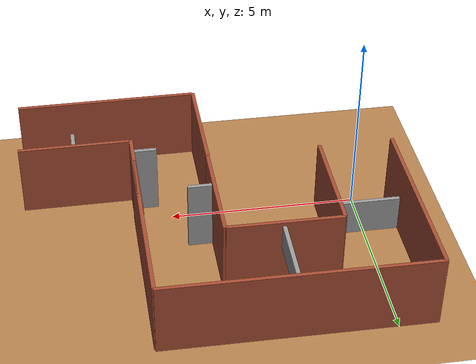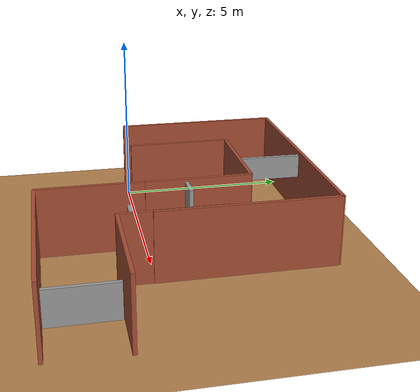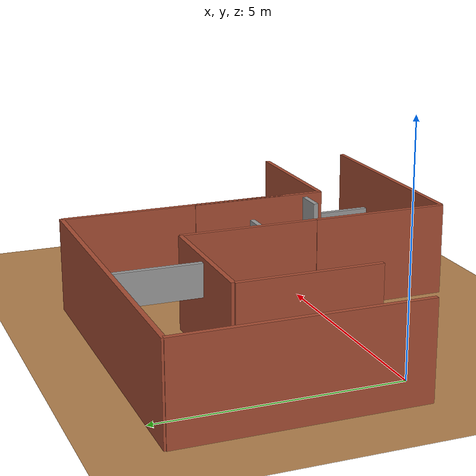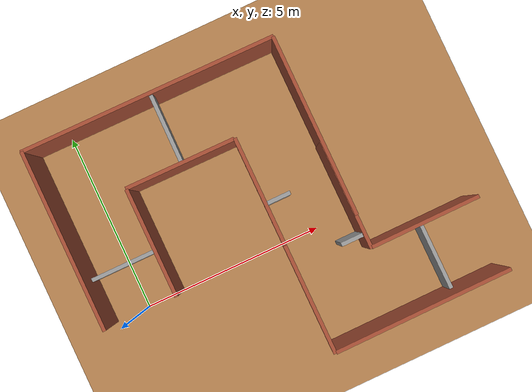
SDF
<sdf version="1.6">
 <world name="default">
  <light name="sun" type="directional">
   <pose>0 0 10 0 -0 0</pose>
   <diffuse>0.8 0.8 0.8 1</diffuse>
   <specular>0.2 0.2 0.2 1</specular>
   <attenuation>
    <range>1000</range>
    <constant>0.9</constant>
    <linear>0.01</linear>
    <quadratic>0.001</quadratic>
   </attenuation>
   <direction>-0.5 0.1 -0.9</direction>
  </light>
  <model name="ground_plane">
   <static>1</static>
   <link name="link">
    <collision name="collision">
     <geometry><plane><normal>0 0 1</normal><size>100 100</size></plane></geometry>
     <surface>
      <contact><collide_bitmask>65535</collide_bitmask></contact>
      <friction><ode><mu>100</mu><mu2>50</mu2></ode></friction>
     </surface>
    </collision>
    <visual name="visual">
     <cast_shadows>0</cast_shadows>
     <geometry><plane><normal>0 0 1</normal><size>100 100</size></plane></geometry>
     <material>
      <script><uri>file://media/materials/scripts/gazebo.material</uri><name>Gazebo/WoodFloor</name></script>
     </material>
    </visual>
   </link>
  </model>
  <gravity>0 0 -9.8</gravity>
  <magnetic_field>6e-06 2.3e-05 -4.2e-05</magnetic_field>
  <atmosphere type="adiabatic"/>
  <physics name="default_physics" default="0" type="ode">
   <max_step_size>0.001</max_step_size>
   <real_time_factor>1</real_time_factor>
   <real_time_update_rate>1000</real_time_update_rate>
  </physics>
  <scene><ambient>0.4 0.4 0.4 1</ambient><background>0.7 0.7 0.7 1</background><shadows>1</shadows></scene>
  <spherical_coordinates>
   <surface_model>EARTH_WGS84</surface_model>
   <latitude_deg>0</latitude_deg>
   <longitude_deg>0</longitude_deg>
   <elevation>0</elevation>
   <heading_deg>0</heading_deg>
  </spherical_coordinates>
  <model name="addition_to_maze">
   <link name="link_0">
    <inertial>
     <mass>4.98571</mass>
     <inertia><ixx>11.9895</ixx><ixy>0</ixy><ixz>0</ixz><iyy>1.66606</iyy><iyz>0</iyz><izz>10.3317</izz></inertia>
    </inertial>
    <pose>-0.990393 2.48292 0.996212 0 -0 0</pose>
    <visual name="visual">
     <geometry><box><size>0.1 4.9857 2</size></box></geometry>
     <material>
      <lighting>1</lighting>
      <script><uri>file://media/materials/scripts/gazebo.material</uri><name>Gazebo/Bricks</name></script>
      <shader type="pixel"><normal_map>__default__</normal_map></shader>
      <ambient>0.3 0.3 0.3 1</ambient>
      <diffuse>0.7 0.7 0.7 1</diffuse>
      <specular>0.01 0.01 0.01 1</specular>
      <emissive>0 0 0 1</emissive>
     </material>
    </visual>
    <collision name="collision">
     <geometry><box><size>0.1 4.9857 2</size></box></geometry>
     <surface>
      <friction>
       <ode><mu>1</mu><mu2>1</mu2><fdir1>0 0 0</fdir1><slip1>0</slip1><slip2>0</slip2></ode>
       <torsional>
        <coefficient>1</coefficient>
        <patch_radius>0</patch_radius>
        <surface_radius>0</surface_radius>
        <use_patch_radius>1</use_patch_radius>
        <ode><slip>0</slip></ode>
       </torsional>
      </friction>
      <bounce><restitution_coefficient>0</restitution_coefficient><threshold>1e+06</threshold></bounce>
      <contact>
       <collide_without_contact>0</collide_without_contact>
       <collide_without_contact_bitmask>1</collide_without_contact_bitmask>
       <collide_bitmask>1</collide_bitmask>
       <ode>
        <soft_cfm>0</soft_cfm>
        <soft_erp>0.2</soft_erp>
        <kp>1e+13</kp>
        <kd>1</kd>
        <max_vel>0.01</max_vel>
        <min_depth>0</min_depth>
       </ode>
       <bullet>
        <split_impulse>1</split_impulse>
        <split_impulse_penetration_threshold>-0.01</split_impulse_penetration_threshold>
        <soft_cfm>0</soft_cfm>
        <soft_erp>0.2</soft_erp>
        <kp>1e+13</kp>
        <kd>1</kd>
       </bullet>
      </contact>
     </surface>
    </collision>
   </link>
   <link name="link_0_0">
    <inertial>
     <mass>0.211494</mass>
     <inertia>
      <ixx>0.0178289</ixx>
      <ixy>0</ixy>
      <ixz>0</ixz>
      <iyy>0.0856085</iyy>
      <iyz>0</iyz>
      <izz>0.0681884</izz>
     </inertia>
    </inertial>
    <pose>-0.011011 1.29597 0.496247 0 -3.8e-05 0</pose>
    <visual name="visual">
     <geometry><box><size>1.96402 0.107684 1</size></box></geometry>
     <material>
      <lighting>1</lighting>
      <script><uri>file://media/materials/scripts/gazebo.material</uri><name>Gazebo/Grey</name></script>
      <shader type="pixel"/>
     </material>
    </visual>
    <collision name="collision">
     <geometry><box><size>1.96402 0.107684 1</size></box></geometry>
     <surface>
      <friction>
       <ode><mu>1</mu><mu2>1</mu2><fdir1>0 0 0</fdir1><slip1>0</slip1><slip2>0</slip2></ode>
       <torsional>
        <coefficient>1</coefficient>
        <patch_radius>0</patch_radius>
        <surface_radius>0</surface_radius>
        <use_patch_radius>1</use_patch_radius>
        <ode><slip>0</slip></ode>
       </torsional>
      </friction>
      <bounce><restitution_coefficient>0</restitution_coefficient><threshold>1e+06</threshold></bounce>
      <contact>
       <collide_without_contact>0</collide_without_contact>
       <collide_without_contact_bitmask>1</collide_without_contact_bitmask>
       <collide_bitmask>1</collide_bitmask>
       <ode>
        <soft_cfm>0</soft_cfm>
        <soft_erp>0.2</soft_erp>
        <kp>1e+13</kp>
        <kd>1</kd>
        <max_vel>0.01</max_vel>
        <min_depth>0</min_depth>
       </ode>
       <bullet>
        <split_impulse>1</split_impulse>
        <split_impulse_penetration_threshold>-0.01</split_impulse_penetration_threshold>
        <soft_cfm>0</soft_cfm>
        <soft_erp>0.2</soft_erp>
        <kp>1e+13</kp>
        <kd>1</kd>
       </bullet>
      </contact>
     </surface>
    </collision>
   </link>
   <link name="link_0_0_clone">
    <inertial>
     <mass>0.146592</mass>
     <inertia>
      <ixx>0.00601043</ixx>
      <ixy>0</ixy>
      <ixz>0</ixz>
      <iyy>0.0529904</iyy>
      <iyz>0</iyz>
      <izz>0.0472633</izz>
     </inertia>
    </inertial>
    <pose>2.55006 3.97139 1.55042 7.6e-05 1e-06 -1.57989</pose>
    <gravity>0</gravity>
    <visual name="visual_0">
     <geometry><box><size>1.96402 0.107684 0.693122</size></box></geometry>
     <material>
      <lighting>1</lighting>
      <script><uri>file://media/materials/scripts/gazebo.material</uri><name>Gazebo/Grey</name></script>
      <shader type="pixel"><normal_map>__default__</normal_map></shader>
     </material>
    </visual>
    <collision name="collision">
     <geometry><box><size>1.96402 0.107684 0.693122</size></box></geometry>
     <surface>
      <friction>
       <ode><mu>1</mu><mu2>1</mu2><fdir1>0 0 0</fdir1><slip1>0</slip1><slip2>0</slip2></ode>
       <torsional>
        <coefficient>1</coefficient>
        <patch_radius>0</patch_radius>
        <surface_radius>0</surface_radius>
        <use_patch_radius>1</use_patch_radius>
        <ode><slip>0</slip></ode>
       </torsional>
      </friction>
      <bounce><restitution_coefficient>0</restitution_coefficient><threshold>1e+06</threshold></bounce>
      <contact>
       <collide_without_contact>0</collide_without_contact>
       <collide_without_contact_bitmask>1</collide_without_contact_bitmask>
       <collide_bitmask>1</collide_bitmask>
       <ode>
        <soft_cfm>0</soft_cfm>
        <soft_erp>0.2</soft_erp>
        <kp>1e+13</kp>
        <kd>1</kd>
        <max_vel>0.01</max_vel>
        <min_depth>0</min_depth>
       </ode>
       <bullet>
        <split_impulse>1</split_impulse>
        <split_impulse_penetration_threshold>-0.01</split_impulse_penetration_threshold>
        <soft_cfm>0</soft_cfm>
        <soft_erp>0.2</soft_erp>
        <kp>1e+13</kp>
        <kd>1</kd>
       </bullet>
      </contact>
     </surface>
    </collision>
   </link>
   <link name="link_0_0_clone_0">
    <inertial>
     <mass>0.141744</mass>
     <inertia>
      <ixx>0.0472287</ixx>
      <ixy>0</ixy>
      <ixz>0</ixz>
      <iyy>0.0522248</iyy>
      <iyz>0</iyz>
      <izz>0.00526995</izz>
     </inertia>
    </inertial>
    <pose>4.38488 1.16615 0.92126 0 -7.6e-05 0</pose>
    <visual name="visual_0">
     <geometry><box><size>0.659209 0.107684 1.99669</size></box></geometry>
     <material>
      <lighting>1</lighting>
      <script><uri>file://media/materials/scripts/gazebo.material</uri><name>Gazebo/Grey</name></script>
      <shader type="pixel"/>
     </material>
    </visual>
    <collision name="collision">
     <geometry><box><size>0.659209 0.107684 1.99669</size></box></geometry>
     <surface>
      <friction>
       <ode><mu>1</mu><mu2>1</mu2><fdir1>0 0 0</fdir1><slip1>0</slip1><slip2>0</slip2></ode>
       <torsional>
        <coefficient>1</coefficient>
        <patch_radius>0</patch_radius>
        <surface_radius>0</surface_radius>
        <use_patch_radius>1</use_patch_radius>
        <ode><slip>0</slip></ode>
       </torsional>
      </friction>
      <bounce><restitution_coefficient>0</restitution_coefficient><threshold>1e+06</threshold></bounce>
      <contact>
       <collide_without_contact>0</collide_without_contact>
       <collide_without_contact_bitmask>1</collide_without_contact_bitmask>
       <collide_bitmask>1</collide_bitmask>
       <ode>
        <soft_cfm>0</soft_cfm>
        <soft_erp>0.2</soft_erp>
        <kp>1e+13</kp>
        <kd>1</kd>
        <max_vel>0.01</max_vel>
        <min_depth>0</min_depth>
       </ode>
       <bullet>
        <split_impulse>1</split_impulse>
        <split_impulse_penetration_threshold>-0.01</split_impulse_penetration_threshold>
        <soft_cfm>0</soft_cfm>
        <soft_erp>0.2</soft_erp>
        <kp>1e+13</kp>
        <kd>1</kd>
       </bullet>
      </contact>
     </surface>
    </collision>
   </link>
   <link name="link_0_0_clone_0_clone">
    <inertial>
     <mass>0.141744</mass>
     <inertia>
      <ixx>0.0472287</ixx>
      <ixy>0</ixy>
      <ixz>0</ixz>
      <iyy>0.0522248</iyy>
      <iyz>0</iyz>
      <izz>0.00526995</izz>
     </inertia>
    </inertial>
    <pose>5.64904 -0.57676 0.921473 0 -0.000114 0</pose>
    <visual name="visual_0">
     <geometry><box><size>0.659209 0.107684 1.99669</size></box></geometry>
     <material>
      <lighting>1</lighting>
      <script><uri>file://media/materials/scripts/gazebo.material</uri><name>Gazebo/Grey</name></script>
      <shader type="pixel"/>
     </material>
    </visual>
    <collision name="collision">
     <geometry><box><size>0.659209 0.107684 1.99669</size></box></geometry>
     <surface>
      <friction>
       <ode><mu>1</mu><mu2>1</mu2><fdir1>0 0 0</fdir1><slip1>0</slip1><slip2>0</slip2></ode>
       <torsional>
        <coefficient>1</coefficient>
        <patch_radius>0</patch_radius>
        <surface_radius>0</surface_radius>
        <use_patch_radius>1</use_patch_radius>
        <ode><slip>0</slip></ode>
       </torsional>
      </friction>
      <bounce><restitution_coefficient>0</restitution_coefficient><threshold>1e+06</threshold></bounce>
      <contact>
       <collide_without_contact>0</collide_without_contact>
       <collide_without_contact_bitmask>1</collide_without_contact_bitmask>
       <collide_bitmask>1</collide_bitmask>
       <ode>
        <soft_cfm>0</soft_cfm>
        <soft_erp>0.2</soft_erp>
        <kp>1e+13</kp>
        <kd>1</kd>
        <max_vel>0.01</max_vel>
        <min_depth>0</min_depth>
       </ode>
       <bullet>
        <split_impulse>1</split_impulse>
        <split_impulse_penetration_threshold>-0.01</split_impulse_penetration_threshold>
        <soft_cfm>0</soft_cfm>
        <soft_erp>0.2</soft_erp>
        <kp>1e+13</kp>
        <kd>1</kd>
       </bullet>
      </contact>
     </surface>
    </collision>
   </link>
   <link name="link_0_0_clone_1">
    <inertial>
     <mass>0.211494</mass>
     <inertia>
      <ixx>0.0178289</ixx>
      <ixy>0</ixy>
      <ixz>0</ixz>
      <iyy>0.0856085</iyy>
      <iyz>0</iyz>
      <izz>0.0681884</izz>
     </inertia>
    </inertial>
    <pose>7.49534 -1.98919 0.49653 7.6e-05 -0 -1.56767</pose>
    <visual name="visual_0">
     <geometry><box><size>1.96402 0.107684 1</size></box></geometry>
     <material>
      <lighting>1</lighting>
      <script><uri>file://media/materials/scripts/gazebo.material</uri><name>Gazebo/Grey</name></script>
      <shader type="pixel"/>
     </material>
    </visual>
    <collision name="collision">
     <geometry><box><size>1.96402 0.107684 1</size></box></geometry>
     <surface>
      <friction>
       <ode><mu>1</mu><mu2>1</mu2><fdir1>0 0 0</fdir1><slip1>0</slip1><slip2>0</slip2></ode>
       <torsional>
        <coefficient>1</coefficient>
        <patch_radius>0</patch_radius>
        <surface_radius>0</surface_radius>
        <use_patch_radius>1</use_patch_radius>
        <ode><slip>0</slip></ode>
       </torsional>
      </friction>
      <bounce><restitution_coefficient>0</restitution_coefficient><threshold>1e+06</threshold></bounce>
      <contact>
       <collide_without_contact>0</collide_without_contact>
       <collide_without_contact_bitmask>1</collide_without_contact_bitmask>
       <collide_bitmask>1</collide_bitmask>
       <ode>
        <soft_cfm>0</soft_cfm>
        <soft_erp>0.2</soft_erp>
        <kp>1e+13</kp>
        <kd>1</kd>
        <max_vel>0.01</max_vel>
        <min_depth>0</min_depth>
       </ode>
       <bullet>
        <split_impulse>1</split_impulse>
        <split_impulse_penetration_threshold>-0.01</split_impulse_penetration_threshold>
        <soft_cfm>0</soft_cfm>
        <soft_erp>0.2</soft_erp>
        <kp>1e+13</kp>
        <kd>1</kd>
       </bullet>
      </contact>
     </surface>
    </collision>
   </link>
   <link name="link_0_clone">
    <inertial>
     <mass>2.98774</mass>
     <inertia><ixx>3.21841</ixx><ixy>0</ixy><ixz>0</ixz><iyy>0.998402</iyy><iyz>0</iyz><izz>2.22499</izz></inertia>
    </inertial>
    <pose>1.00554 1.49859 0.996212 0 -0 0</pose>
    <visual name="visual">
     <geometry><box><size>0.1 2.98772 2</size></box></geometry>
     <material>
      <lighting>1</lighting>
      <script><uri>file://media/materials/scripts/gazebo.material</uri><name>Gazebo/Bricks</name></script>
      <shader type="pixel"><normal_map>__default__</normal_map></shader>
      <ambient>0.3 0.3 0.3 1</ambient>
      <diffuse>0.7 0.7 0.7 1</diffuse>
      <specular>0.01 0.01 0.01 1</specular>
      <emissive>0 0 0 1</emissive>
     </material>
    </visual>
    <collision name="collision">
     <geometry><box><size>0.1 2.98772 2</size></box></geometry>
     <surface>
      <friction>
       <ode><mu>1</mu><mu2>1</mu2><fdir1>0 0 0</fdir1><slip1>0</slip1><slip2>0</slip2></ode>
       <torsional>
        <coefficient>1</coefficient>
        <patch_radius>0</patch_radius>
        <surface_radius>0</surface_radius>
        <use_patch_radius>1</use_patch_radius>
        <ode><slip>0</slip></ode>
       </torsional>
      </friction>
      <bounce><restitution_coefficient>0</restitution_coefficient><threshold>1e+06</threshold></bounce>
      <contact>
       <collide_without_contact>0</collide_without_contact>
       <collide_without_contact_bitmask>1</collide_without_contact_bitmask>
       <collide_bitmask>1</collide_bitmask>
       <ode>
        <soft_cfm>0</soft_cfm>
        <soft_erp>0.2</soft_erp>
        <kp>1e+13</kp>
        <kd>1</kd>
        <max_vel>0.01</max_vel>
        <min_depth>0</min_depth>
       </ode>
       <bullet>
        <split_impulse>1</split_impulse>
        <split_impulse_penetration_threshold>-0.01</split_impulse_penetration_threshold>
        <soft_cfm>0</soft_cfm>
        <soft_erp>0.2</soft_erp>
        <kp>1e+13</kp>
        <kd>1</kd>
       </bullet>
      </contact>
     </surface>
    </collision>
   </link>
   <link name="link_0_clone_0">
    <inertial>
     <mass>7.02726</mass>
     <inertia><ixx>31.2609</ixx><ixy>0</ixy><ixz>0</ixz><iyy>2.34828</iyy><iyz>0</iyz><izz>28.9243</izz></inertia>
    </inertial>
    <pose>2.49105 4.94833 0.996212 0 -0 1.56452</pose>
    <visual name="visual">
     <geometry><box><size>0.1 7.02724 2</size></box></geometry>
     <material>
      <lighting>1</lighting>
      <script><uri>file://media/materials/scripts/gazebo.material</uri><name>Gazebo/Bricks</name></script>
      <shader type="pixel"><normal_map>__default__</normal_map></shader>
      <ambient>0.3 0.3 0.3 1</ambient>
      <diffuse>0.7 0.7 0.7 1</diffuse>
      <specular>0.01 0.01 0.01 1</specular>
      <emissive>0 0 0 1</emissive>
     </material>
    </visual>
    <collision name="collision">
     <geometry><box><size>0.1 7.02724 2</size></box></geometry>
     <surface>
      <friction>
       <ode><mu>1</mu><mu2>1</mu2><fdir1>0 0 0</fdir1><slip1>0</slip1><slip2>0</slip2></ode>
       <torsional>
        <coefficient>1</coefficient>
        <patch_radius>0</patch_radius>
        <surface_radius>0</surface_radius>
        <use_patch_radius>1</use_patch_radius>
        <ode><slip>0</slip></ode>
       </torsional>
      </friction>
      <bounce><restitution_coefficient>0</restitution_coefficient><threshold>1e+06</threshold></bounce>
      <contact>
       <collide_without_contact>0</collide_without_contact>
       <collide_without_contact_bitmask>1</collide_without_contact_bitmask>
       <collide_bitmask>1</collide_bitmask>
       <ode>
        <soft_cfm>0</soft_cfm>
        <soft_erp>0.2</soft_erp>
        <kp>1e+13</kp>
        <kd>1</kd>
        <max_vel>0.01</max_vel>
        <min_depth>0</min_depth>
       </ode>
       <bullet>
        <split_impulse>1</split_impulse>
        <split_impulse_penetration_threshold>-0.01</split_impulse_penetration_threshold>
        <soft_cfm>0</soft_cfm>
        <soft_erp>0.2</soft_erp>
        <kp>1e+13</kp>
        <kd>1</kd>
       </bullet>
      </contact>
     </surface>
    </collision>
   </link>
   <link name="link_0_clone_0_clone">
    <inertial>
     <mass>3.01297</mass>
     <inertia><ixx>3.28364</ixx><ixy>0</ixy><ixz>0</ixz><iyy>1.00683</iyy><iyz>0</iyz><izz>2.28183</izz></inertia>
    </inertial>
    <pose>2.50085 3.00235 0.996212 0 -0 1.56452</pose>
    <visual name="visual">
     <geometry><box><size>0.1 3.01297 2</size></box></geometry>
     <material>
      <lighting>1</lighting>
      <script><uri>file://media/materials/scripts/gazebo.material</uri><name>Gazebo/Bricks</name></script>
      <shader type="pixel"><normal_map>__default__</normal_map></shader>
      <ambient>0.3 0.3 0.3 1</ambient>
      <diffuse>0.7 0.7 0.7 1</diffuse>
      <specular>0.01 0.01 0.01 1</specular>
      <emissive>0 0 0 1</emissive>
     </material>
    </visual>
    <collision name="collision">
     <geometry><box><size>0.1 3.01297 2</size></box></geometry>
     <surface>
      <friction>
       <ode><mu>1</mu><mu2>1</mu2><fdir1>0 0 0</fdir1><slip1>0</slip1><slip2>0</slip2></ode>
       <torsional>
        <coefficient>1</coefficient>
        <patch_radius>0</patch_radius>
        <surface_radius>0</surface_radius>
        <use_patch_radius>1</use_patch_radius>
        <ode><slip>0</slip></ode>
       </torsional>
      </friction>
      <bounce><restitution_coefficient>0</restitution_coefficient><threshold>1e+06</threshold></bounce>
      <contact>
       <collide_without_contact>0</collide_without_contact>
       <collide_without_contact_bitmask>1</collide_without_contact_bitmask>
       <collide_bitmask>1</collide_bitmask>
       <ode>
        <soft_cfm>0</soft_cfm>
        <soft_erp>0.2</soft_erp>
        <kp>1e+13</kp>
        <kd>1</kd>
        <max_vel>0.01</max_vel>
        <min_depth>0</min_depth>
       </ode>
       <bullet>
        <split_impulse>1</split_impulse>
        <split_impulse_penetration_threshold>-0.01</split_impulse_penetration_threshold>
        <soft_cfm>0</soft_cfm>
        <soft_erp>0.2</soft_erp>
        <kp>1e+13</kp>
        <kd>1</kd>
       </bullet>
      </contact>
     </surface>
    </collision>
   </link>
   <link name="link_0_clone_1">
    <inertial>
     <mass>4.98571</mass>
     <inertia><ixx>11.9895</ixx><ixy>0</ixy><ixz>0</ixz><iyy>1.66606</iyy><iyz>0</iyz><izz>10.3317</izz></inertia>
    </inertial>
    <pose>5.98793 2.43289 0.996212 0 -0 0</pose>
    <visual name="visual">
     <geometry><box><size>0.1 4.9857 2</size></box></geometry>
     <material>
      <lighting>1</lighting>
      <script><uri>file://media/materials/scripts/gazebo.material</uri><name>Gazebo/Bricks</name></script>
      <shader type="pixel"><normal_map>__default__</normal_map></shader>
      <ambient>0.3 0.3 0.3 1</ambient>
      <diffuse>0.7 0.7 0.7 1</diffuse>
      <specular>0.01 0.01 0.01 1</specular>
      <emissive>0 0 0 1</emissive>
     </material>
    </visual>
    <collision name="collision">
     <geometry><box><size>0.1 4.9857 2</size></box></geometry>
     <surface>
      <friction>
       <ode><mu>1</mu><mu2>1</mu2><fdir1>0 0 0</fdir1><slip1>0</slip1><slip2>0</slip2></ode>
       <torsional>
        <coefficient>1</coefficient>
        <patch_radius>0</patch_radius>
        <surface_radius>0</surface_radius>
        <use_patch_radius>1</use_patch_radius>
        <ode><slip>0</slip></ode>
       </torsional>
      </friction>
      <bounce><restitution_coefficient>0</restitution_coefficient><threshold>1e+06</threshold></bounce>
      <contact>
       <collide_without_contact>0</collide_without_contact>
       <collide_without_contact_bitmask>1</collide_without_contact_bitmask>
       <collide_bitmask>1</collide_bitmask>
       <ode>
        <soft_cfm>0</soft_cfm>
        <soft_erp>0.2</soft_erp>
        <kp>1e+13</kp>
        <kd>1</kd>
        <max_vel>0.01</max_vel>
        <min_depth>0</min_depth>
       </ode>
       <bullet>
        <split_impulse>1</split_impulse>
        <split_impulse_penetration_threshold>-0.01</split_impulse_penetration_threshold>
        <soft_cfm>0</soft_cfm>
        <soft_erp>0.2</soft_erp>
        <kp>1e+13</kp>
        <kd>1</kd>
       </bullet>
      </contact>
     </surface>
    </collision>
   </link>
   <link name="link_0_clone_clone">
    <inertial>
     <mass>2.98774</mass>
     <inertia><ixx>3.21841</ixx><ixy>0</ixy><ixz>0</ixz><iyy>0.998402</iyy><iyz>0</iyz><izz>2.22499</izz></inertia>
    </inertial>
    <pose>4.02637 1.50915 0.996212 0 -0 0</pose>
    <visual name="visual">
     <geometry><box><size>0.1 2.98772 2</size></box></geometry>
     <material>
      <lighting>1</lighting>
      <script><uri>file://media/materials/scripts/gazebo.material</uri><name>Gazebo/Bricks</name></script>
      <shader type="pixel"><normal_map>__default__</normal_map></shader>
      <ambient>0.3 0.3 0.3 1</ambient>
      <diffuse>0.7 0.7 0.7 1</diffuse>
      <specular>0.01 0.01 0.01 1</specular>
      <emissive>0 0 0 1</emissive>
     </material>
    </visual>
    <collision name="collision">
     <geometry><box><size>0.1 2.98772 2</size></box></geometry>
     <surface>
      <friction>
       <ode><mu>1</mu><mu2>1</mu2><fdir1>0 0 0</fdir1><slip1>0</slip1><slip2>0</slip2></ode>
       <torsional>
        <coefficient>1</coefficient>
        <patch_radius>0</patch_radius>
        <surface_radius>0</surface_radius>
        <use_patch_radius>1</use_patch_radius>
        <ode><slip>0</slip></ode>
       </torsional>
      </friction>
      <bounce><restitution_coefficient>0</restitution_coefficient><threshold>1e+06</threshold></bounce>
      <contact>
       <collide_without_contact>0</collide_without_contact>
       <collide_without_contact_bitmask>1</collide_without_contact_bitmask>
       <collide_bitmask>1</collide_bitmask>
       <ode>
        <soft_cfm>0</soft_cfm>
        <soft_erp>0.2</soft_erp>
        <kp>1e+13</kp>
        <kd>1</kd>
        <max_vel>0.01</max_vel>
        <min_depth>0</min_depth>
       </ode>
       <bullet>
        <split_impulse>1</split_impulse>
        <split_impulse_penetration_threshold>-0.01</split_impulse_penetration_threshold>
        <soft_cfm>0</soft_cfm>
        <soft_erp>0.2</soft_erp>
        <kp>1e+13</kp>
        <kd>1</kd>
       </bullet>
      </contact>
     </surface>
    </collision>
   </link>
   <link name="link_0_clone_clone_clone">
    <inertial>
     <mass>2.98774</mass>
     <inertia><ixx>3.21841</ixx><ixy>0</ixy><ixz>0</ixz><iyy>0.998402</iyy><iyz>0</iyz><izz>2.22499</izz></inertia>
    </inertial>
    <pose>4.02 -1.48246 0.996212 0 -0 0</pose>
    <visual name="visual">
     <geometry><box><size>0.1 2.98772 2</size></box></geometry>
     <material>
      <lighting>1</lighting>
      <script><uri>file://media/materials/scripts/gazebo.material</uri><name>Gazebo/Bricks</name></script>
      <shader type="pixel"><normal_map>__default__</normal_map></shader>
      <ambient>0.3 0.3 0.3 1</ambient>
      <diffuse>0.7 0.7 0.7 1</diffuse>
      <specular>0.01 0.01 0.01 1</specular>
      <emissive>0 0 0 1</emissive>
     </material>
    </visual>
    <collision name="collision">
     <geometry><box><size>0.1 2.98772 2</size></box></geometry>
     <surface>
      <friction>
       <ode><mu>1</mu><mu2>1</mu2><fdir1>0 0 0</fdir1><slip1>0</slip1><slip2>0</slip2></ode>
       <torsional>
        <coefficient>1</coefficient>
        <patch_radius>0</patch_radius>
        <surface_radius>0</surface_radius>
        <use_patch_radius>1</use_patch_radius>
        <ode><slip>0</slip></ode>
       </torsional>
      </friction>
      <bounce><restitution_coefficient>0</restitution_coefficient><threshold>1e+06</threshold></bounce>
      <contact>
       <collide_without_contact>0</collide_without_contact>
       <collide_without_contact_bitmask>1</collide_without_contact_bitmask>
       <collide_bitmask>1</collide_bitmask>
       <ode>
        <soft_cfm>0</soft_cfm>
        <soft_erp>0.2</soft_erp>
        <kp>1e+13</kp>
        <kd>1</kd>
        <max_vel>0.01</max_vel>
        <min_depth>0</min_depth>
       </ode>
       <bullet>
        <split_impulse>1</split_impulse>
        <split_impulse_penetration_threshold>-0.01</split_impulse_penetration_threshold>
        <soft_cfm>0</soft_cfm>
        <soft_erp>0.2</soft_erp>
        <kp>1e+13</kp>
        <kd>1</kd>
       </bullet>
      </contact>
     </surface>
    </collision>
   </link>
   <link name="link_0_clone_clone_clone_0">
    <inertial>
     <mass>2.98774</mass>
     <inertia><ixx>3.21841</ixx><ixy>0</ixy><ixz>0</ixz><iyy>0.998402</iyy><iyz>0</iyz><izz>2.22499</izz></inertia>
    </inertial>
    <pose>5.96903 0.510976 0.996212 0 -0 0</pose>
    <visual name="visual">
     <geometry><box><size>0.1 2.98772 2</size></box></geometry>
     <material>
      <lighting>1</lighting>
      <script><uri>file://media/materials/scripts/gazebo.material</uri><name>Gazebo/Bricks</name></script>
      <shader type="pixel"><normal_map>__default__</normal_map></shader>
      <ambient>0.3 0.3 0.3 1</ambient>
      <diffuse>0.7 0.7 0.7 1</diffuse>
      <specular>0.01 0.01 0.01 1</specular>
      <emissive>0 0 0 1</emissive>
     </material>
    </visual>
    <collision name="collision">
     <geometry><box><size>0.1 2.98772 2</size></box></geometry>
     <surface>
      <friction>
       <ode><mu>1</mu><mu2>1</mu2><fdir1>0 0 0</fdir1><slip1>0</slip1><slip2>0</slip2></ode>
       <torsional>
        <coefficient>1</coefficient>
        <patch_radius>0</patch_radius>
        <surface_radius>0</surface_radius>
        <use_patch_radius>1</use_patch_radius>
        <ode><slip>0</slip></ode>
       </torsional>
      </friction>
      <bounce><restitution_coefficient>0</restitution_coefficient><threshold>1e+06</threshold></bounce>
      <contact>
       <collide_without_contact>0</collide_without_contact>
       <collide_without_contact_bitmask>1</collide_without_contact_bitmask>
       <collide_bitmask>1</collide_bitmask>
       <ode>
        <soft_cfm>0</soft_cfm>
        <soft_erp>0.2</soft_erp>
        <kp>1e+13</kp>
        <kd>1</kd>
        <max_vel>0.01</max_vel>
        <min_depth>0</min_depth>
       </ode>
       <bullet>
        <split_impulse>1</split_impulse>
        <split_impulse_penetration_threshold>-0.01</split_impulse_penetration_threshold>
        <soft_cfm>0</soft_cfm>
        <soft_erp>0.2</soft_erp>
        <kp>1e+13</kp>
        <kd>1</kd>
       </bullet>
      </contact>
     </surface>
    </collision>
   </link>
   <link name="link_0_clone_clone_clone_clone">
    <inertial>
     <mass>4.87343</mass>
     <inertia><ixx>11.2698</ixx><ixy>0</ixy><ixz>0</ixz><iyy>1.62854</iyy><iyz>0</iyz><izz>9.64936</izz></inertia>
    </inertial>
    <pose>6.48494 -2.94637 0.996213 0 -0 1.57641</pose>
    <visual name="visual">
     <geometry><box><size>0.1 4.87339 2</size></box></geometry>
     <material>
      <lighting>1</lighting>
      <script><uri>file://media/materials/scripts/gazebo.material</uri><name>Gazebo/Bricks</name></script>
      <shader type="pixel"><normal_map>__default__</normal_map></shader>
      <ambient>0.3 0.3 0.3 1</ambient>
      <diffuse>0.7 0.7 0.7 1</diffuse>
      <specular>0.01 0.01 0.01 1</specular>
      <emissive>0 0 0 1</emissive>
     </material>
    </visual>
    <collision name="collision">
     <geometry><box><size>0.1 4.87339 2</size></box></geometry>
     <surface>
      <friction>
       <ode><mu>1</mu><mu2>1</mu2><fdir1>0 0 0</fdir1><slip1>0</slip1><slip2>0</slip2></ode>
       <torsional>
        <coefficient>1</coefficient>
        <patch_radius>0</patch_radius>
        <surface_radius>0</surface_radius>
        <use_patch_radius>1</use_patch_radius>
        <ode><slip>0</slip></ode>
       </torsional>
      </friction>
      <bounce><restitution_coefficient>0</restitution_coefficient><threshold>1e+06</threshold></bounce>
      <contact>
       <collide_without_contact>0</collide_without_contact>
       <collide_without_contact_bitmask>1</collide_without_contact_bitmask>
       <collide_bitmask>1</collide_bitmask>
       <ode>
        <soft_cfm>0</soft_cfm>
        <soft_erp>0.2</soft_erp>
        <kp>1e+13</kp>
        <kd>1</kd>
        <max_vel>0.01</max_vel>
        <min_depth>0</min_depth>
       </ode>
       <bullet>
        <split_impulse>1</split_impulse>
        <split_impulse_penetration_threshold>-0.01</split_impulse_penetration_threshold>
        <soft_cfm>0</soft_cfm>
        <soft_erp>0.2</soft_erp>
        <kp>1e+13</kp>
        <kd>1</kd>
       </bullet>
      </contact>
     </surface>
    </collision>
   </link>
   <link name="link_0_clone_clone_clone_clone_clone">
    <inertial>
     <mass>2.98822</mass>
     <inertia><ixx>3.21964</ixx><ixy>0</ixy><ixz>0</ixz><iyy>0.998564</iyy><iyz>0</iyz><izz>2.22605</izz></inertia>
    </inertial>
    <pose>7.48228 -0.943239 0.996212 0 -0 1.57641</pose>
    <visual name="visual">
     <geometry><box><size>0.1 2.98819 2</size></box></geometry>
     <material>
      <lighting>1</lighting>
      <script><uri>file://media/materials/scripts/gazebo.material</uri><name>Gazebo/Bricks</name></script>
      <shader type="pixel"><normal_map>__default__</normal_map></shader>
      <ambient>0.3 0.3 0.3 1</ambient>
      <diffuse>0.7 0.7 0.7 1</diffuse>
      <specular>0.01 0.01 0.01 1</specular>
      <emissive>0 0 0 1</emissive>
     </material>
    </visual>
    <collision name="collision">
     <geometry><box><size>0.1 2.98819 2</size></box></geometry>
     <surface>
      <friction>
       <ode><mu>1</mu><mu2>1</mu2><fdir1>0 0 0</fdir1><slip1>0</slip1><slip2>0</slip2></ode>
       <torsional>
        <coefficient>1</coefficient>
        <patch_radius>0</patch_radius>
        <surface_radius>0</surface_radius>
        <use_patch_radius>1</use_patch_radius>
        <ode><slip>0</slip></ode>
       </torsional>
      </friction>
      <bounce><restitution_coefficient>0</restitution_coefficient><threshold>1e+06</threshold></bounce>
      <contact>
       <collide_without_contact>0</collide_without_contact>
       <collide_without_contact_bitmask>1</collide_without_contact_bitmask>
       <collide_bitmask>1</collide_bitmask>
       <ode>
        <soft_cfm>0</soft_cfm>
        <soft_erp>0.2</soft_erp>
        <kp>1e+13</kp>
        <kd>1</kd>
        <max_vel>0.01</max_vel>
        <min_depth>0</min_depth>
       </ode>
       <bullet>
        <split_impulse>1</split_impulse>
        <split_impulse_penetration_threshold>-0.01</split_impulse_penetration_threshold>
        <soft_cfm>0</soft_cfm>
        <soft_erp>0.2</soft_erp>
        <kp>1e+13</kp>
        <kd>1</kd>
       </bullet>
      </contact>
     </surface>
    </collision>
   </link>
   <static>0</static>
   <pose>0 0 0.003759 0 3.1e-05 0</pose>
  </model>
 </world>
</sdf>
